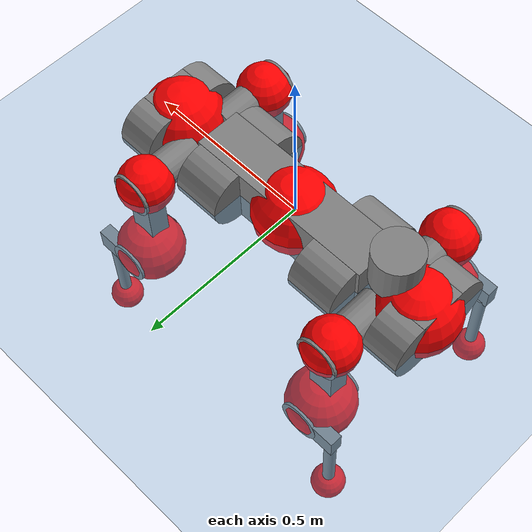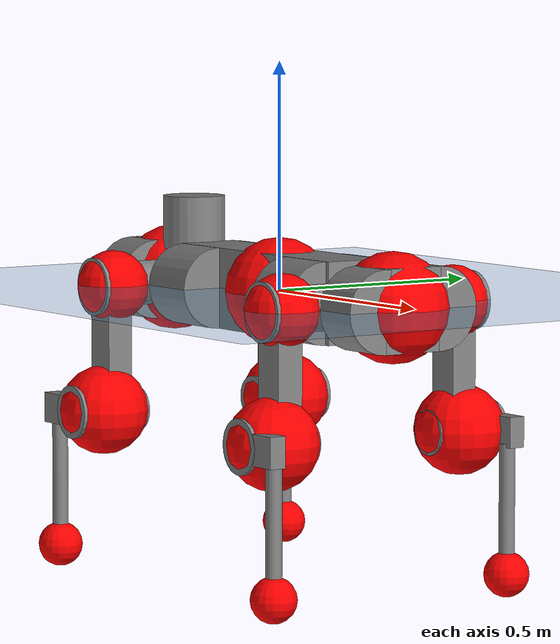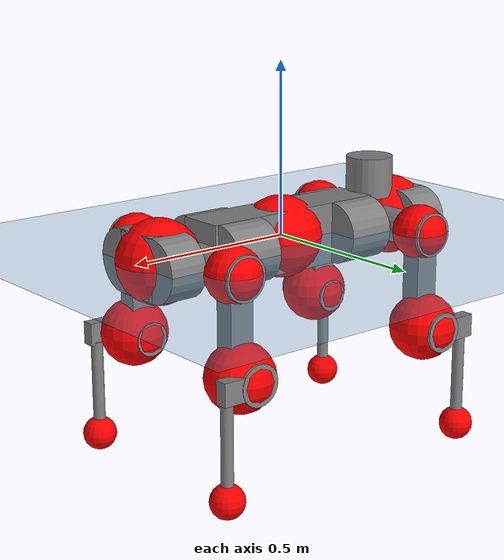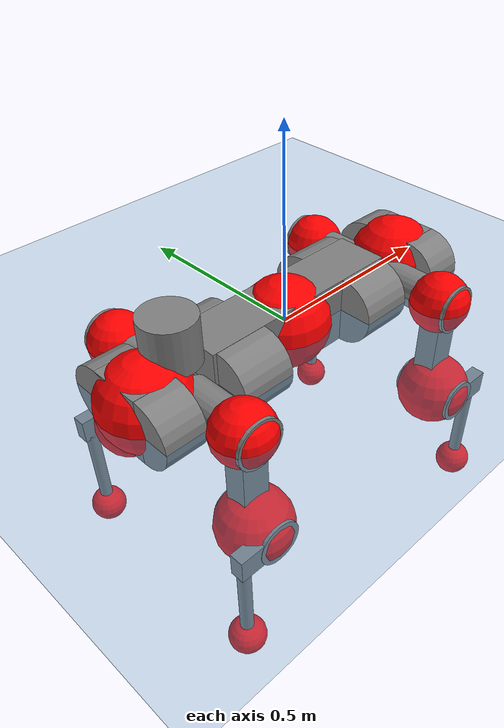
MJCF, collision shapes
<mujoco model="anymal_c">
  <compiler angle="radian" assetdir="assets" balanceinertia="true" inertiafromgeom="false"/>

  <option timestep="0.005" density="1.2" viscosity="2e-05"/>

  <size nkey="1"/>

  <visual>
    <quality shadowsize="8192"/>
    <map shadowclip="0.5"/>
  </visual>

  <default>
    <default class="/">
      <material specular="0" shininess="0.25"/>
      <geom contype="0" conaffinity="0" group="1" solref="-1000 -80"/>
      <site size="0.01 0.005 0.005" group="5"/>
      <general forcelimited="true" forcerange="-80 80" biastype="affine" gainprm="80" biasprm="0 -80 -2"/>
      <default class="anymal_c">
        <joint armature="0.01" damping="0.01" frictionloss="0.1"/>
        <default class="visual">
          <geom type="mesh" group="2"/>
          <default class="visual_zflip"/>
        </default>
        <default class="collision">
          <geom type="cylinder" group="3"/>
          <default class="foot">
            <geom size="0.03 0 0" type="sphere" condim="6" priority="1" friction="0.8 0.02 0.01" solimp="0.015 1 0.03"/>
          </default>
        </default>
      </default>
      <default class="reward_collision_sphere">
        <geom group="5" rgba="1 0 0 1"/>
      </default>
    </default>
  </default>

  <asset>
    <texture type="skybox" colorspace="auto" name="//unnamed_texture_0" builtin="gradient" rgb1="0.95 0.95 0.95" rgb2="0.95 0.95 0.95" width="100" height="600"/>
    <texture type="2d" colorspace="auto" name="texplane" builtin="checker" rgb1="0.345 0.575 0.748" rgb2="0.345 0.575 0.748" markrgb="1 1 1" width="512" height="512"/>
    <texture type="2d" colorspace="linear" name="base" file="base.png"/>
    <texture type="2d" colorspace="linear" name="top_shell" file="top_shell.png"/>
    <texture type="2d" colorspace="linear" name="bottom_shell" file="bottom_shell.png"/>
    <texture type="2d" colorspace="linear" name="remote" file="remote.png"/>
    <texture type="2d" colorspace="linear" name="hatch" file="hatch.png"/>
    <texture type="2d" colorspace="linear" name="handle" file="handle.png"/>
    <texture type="2d" colorspace="linear" name="face" file="face.png"/>
    <texture type="2d" colorspace="linear" name="battery" file="battery.png"/>
    <texture type="2d" colorspace="linear" name="lidar_cage" file="lidar_cage.png"/>
    <texture type="2d" colorspace="linear" name="depth_camera" file="depth_camera.png"/>
    <texture type="2d" colorspace="linear" name="wide_angle_camera" file="wide_angle_camera.png"/>
    <texture type="2d" colorspace="linear" name="lidar" file="lidar.png"/>
    <texture type="2d" colorspace="linear" name="drive" file="drive.png"/>
    <texture type="2d" colorspace="linear" name="hip_l" file="hip_l.png"/>
    <texture type="2d" colorspace="linear" name="shank_l" file="shank_l.png"/>
    <texture type="2d" colorspace="linear" name="foot" file="foot.png"/>
    <texture type="2d" colorspace="linear" name="thigh" file="thigh.png"/>
    <texture type="2d" colorspace="linear" name="shank_r" file="shank_r.png"/>
    <texture type="2d" colorspace="linear" name="hip_r" file="hip_r.png"/>
    <material name="MatPlane" class="/" texture="texplane" texuniform="true" texrepeat="2 2" specular="0.9" shininess="0.5"/>
    <material name="black_plastic" class="/" rgba="0.007 0.007 0.007 1"/>
    <material name="green" class="/" rgba="0.052 0.178 0.033 1"/>
    <material name="red" class="/" rgba="0.178 0.006 0.005 1"/>
    <material name="yellow" class="/" rgba="0.178 0.119 0.006 1"/>
    <material name="lwl" class="/" rgba="0.8 0.8 0.8 1"/>
    <material name="base" class="/" texture="base"/>
    <material name="top_shell" class="/" texture="top_shell"/>
    <material name="bottom_shell" class="/" texture="bottom_shell"/>
    <material name="hip_l" class="/" texture="hip_l"/>
    <material name="thigh" class="/" texture="thigh"/>
    <material name="shank_l" class="/" texture="shank_l"/>
    <material name="foot" class="/" texture="foot"/>
    <material name="hip_r" class="/" texture="hip_r"/>
    <material name="shank" class="/" texture="shank_r"/>
    <material name="hatch" class="/" texture="hatch"/>
    <material name="remote" class="/" texture="remote"/>
    <material name="handle" class="/" texture="handle"/>
    <material name="face" class="/" texture="face"/>
    <material name="depth_camera" class="/" texture="depth_camera"/>
    <material name="wide_angle_camera" class="/" texture="wide_angle_camera"/>
    <material name="battery" class="/" texture="battery"/>
    <material name="lidar_cage" class="/" texture="lidar_cage"/>
    <material name="lidar" class="/" texture="lidar"/>
    <material name="drive" class="/" texture="drive"/>
    <mesh name="base_0" class="/" file="base_0.obj"/>
    <mesh name="base_1" class="/" file="base_1.obj"/>
    <mesh name="base_2" class="/" file="base_2.obj"/>
    <mesh name="base_3" class="/" file="base_3.obj"/>
    <mesh name="base_4" class="/" file="base_4.obj"/>
    <mesh name="base_5" class="/" file="base_5.obj"/>
    <mesh name="top_shell" class="/" file="top_shell.obj"/>
    <mesh name="bottom_shell" class="/" file="bottom_shell.obj"/>
    <mesh name="remote" class="/" file="remote.obj"/>
    <mesh name="handle" class="/" file="handle.obj"/>
    <mesh name="face" class="/" file="face.obj"/>
    <mesh name="wide_angle_camera" class="/" file="wide_angle_camera.obj"/>
    <mesh name="depth_camera" class="/" file="depth_camera.obj"/>
    <mesh name="battery" class="/" file="battery.obj"/>
    <mesh name="lidar_cage" class="/" file="lidar_cage.obj"/>
    <mesh name="lidar" class="/" file="lidar.obj"/>
    <mesh name="drive" class="/" file="drive.obj"/>
    <mesh name="hip_l" class="/" file="hip_l.obj"/>
    <mesh name="thigh" class="/" file="thigh.obj"/>
    <mesh name="shank_l" class="/" file="shank_l.obj"/>
    <mesh name="foot" class="/" file="foot.obj"/>
    <mesh name="hip_r" class="/" file="hip_r.obj"/>
    <mesh name="hatch" class="/" file="hatch.obj"/>
    <mesh name="shank_r" class="/" file="shank_r.obj"/>
  </asset>

  <worldbody>
    <geom name="floor" class="/" size="100 100 0.125" type="plane" group="0" material="MatPlane"/>
    <light name="toplight_shadow" class="/" pos="0 0 5" dir="0.0990148 0.0990148 -0.990148" type="directional" ambient="0.04 0.04 0.04" diffuse="0.55 0.55 0.55" specular="0.12 0.12 0.12"/>
    <light name="toplight_fill" class="/" pos="0 0 5" dir="0.0990148 0.0990148 -0.990148" type="directional" castshadow="false" ambient="0.04 0.04 0.04" diffuse="0.3 0.3 0.3" specular="0.08 0.08 0.08"/>
    <body name="trunk" childclass="anymal_c" pos="-0.000281846 0.000184869 -0.00221953" quat="1 -0.00026768 0.000272907 -0.000297441">
      <inertial pos="0.00132105 9.02135e-05 0.0503564" quat="0.500214 0.499513 0.499918 0.500354" mass="18.0133" diaginertia="0.470351 0.742144 0.190927"/>
      <joint name="//unnamed_joint_0" type="free" armature="0" damping="0" frictionloss="0"/>
      <geom name="//unnamed_geom_1" class="visual" material="green" mesh="base_0"/>
      <geom name="//unnamed_geom_2" class="visual" material="yellow" mesh="base_1"/>
      <geom name="//unnamed_geom_3" class="visual" material="red" mesh="base_2"/>
      <geom name="//unnamed_geom_4" class="visual" material="black_plastic" mesh="base_3"/>
      <geom name="//unnamed_geom_5" class="visual" material="lwl" mesh="base_4"/>
      <geom name="//unnamed_geom_6" class="visual" material="base" mesh="base_5"/>
      <geom name="trunk_1" class="collision" size="0.287003 0.0692765 0.0890698" type="box"/>
      <geom name="trunk_2" class="collision" size="0.0890698 0.0717507" pos="0.205513 0.0731383 0" quat="0.707107 0 0.707107 0"/>
      <geom name="trunk_3" class="collision" size="0.0890698 0.0717507" pos="-0.205513 0.0731383 0" quat="0.707107 0 0.707107 0"/>
      <geom name="trunk_4" class="collision" size="0.0890698 0.0717507" pos="0.205513 -0.0731383 0" quat="0.707107 0 0.707107 0"/>
      <geom name="trunk_5" class="collision" size="0.0890698 0.0717507" pos="-0.205513 -0.0731383 0" quat="0.707107 0 0.707107 0"/>
      <geom name="//unnamed_geom_12" class="visual" material="top_shell" mesh="top_shell"/>
      <geom name="//unnamed_geom_13" class="visual" material="bottom_shell" mesh="bottom_shell"/>
      <geom name="//unnamed_geom_14" class="visual" material="remote" mesh="remote"/>
      <geom name="//unnamed_geom_15" class="visual" material="handle" mesh="handle"/>
      <geom name="//unnamed_geom_16" class="visual" pos="0.391655 0 0" quat="1 0 0 0" material="face" mesh="face"/>
      <geom name="trunk_6" class="collision" size="0.0544316 0.0692765 0.0890698" pos="0.443624 0 0" type="box"/>
      <geom name="//unnamed_geom_18" class="collision" size="0.0890698 0.0544316" pos="0.443624 0.0731383 0" quat="0.707107 0 0.707107 0"/>
      <geom name="//unnamed_geom_19" class="collision" size="0.0890698 0.0544316" pos="0.443624 -0.0731383 0" quat="0.707107 0 0.707107 0"/>
      <geom name="//unnamed_geom_20" class="visual" pos="0.436208 0 -0.0288562" quat="0.965926 0 0.258819 0" material="depth_camera" mesh="depth_camera"/>
      <geom name="//unnamed_geom_21" class="visual" pos="0.484726 0 0.0146598" material="wide_angle_camera" mesh="wide_angle_camera"/>
      <geom name="//unnamed_geom_22" class="visual_zflip" pos="-0.391655 0 0" quat="0 0 0 1" material="face" mesh="face"/>
      <geom name="trunk_7" class="collision" size="0.0544316 0.0692765 0.0890698" pos="-0.443624 0 0" quat="0 0 0 1" type="box"/>
      <geom name="//unnamed_geom_24" class="collision" size="0.0890698 0.0544316" pos="-0.443624 -0.0731383 0" quat="0 -0.707107 0 0.707107"/>
      <geom name="//unnamed_geom_25" class="collision" size="0.0890698 0.0544316" pos="-0.443624 0.0731383 0" quat="0 -0.707107 0 0.707107"/>
      <geom name="//unnamed_geom_26" class="visual" pos="-0.436208 0 -0.0288562" quat="0 -0.258819 0 0.965926" material="depth_camera" mesh="depth_camera"/>
      <geom name="//unnamed_geom_27" class="visual_zflip" pos="-0.484726 0 0.0146598" quat="0 0 0 1" material="wide_angle_camera" mesh="wide_angle_camera"/>
      <geom name="//unnamed_geom_28" class="visual" material="battery" mesh="battery"/>
      <geom name="//unnamed_geom_29" class="visual" pos="0 0.0812009 0.0281866" quat="0.683013 -0.183013 0.183013 0.683013" material="depth_camera" mesh="depth_camera"/>
      <geom name="//unnamed_geom_30" class="visual" pos="0 -0.0812009 0.0281866" quat="0.683013 0.183013 0.183013 -0.683013" material="depth_camera" mesh="depth_camera"/>
      <geom name="//unnamed_geom_31" class="visual" pos="-0.343938 0 0.0719768" quat="1 0 0 0" material="lidar_cage" mesh="lidar_cage"/>
      <geom name="trunk_8" class="collision" size="0.0692765 0.0593799" pos="-0.343938 0 0.130733"/>
      <geom name="//unnamed_geom_33" class="visual" pos="-0.343938 3.92669e-05 0.139253" quat="0.707107 0 0 -0.707107" material="lidar" mesh="lidar"/>
      <geom name="//unnamed_geom_34" class="visual" pos="0.283371 0.108639 1.13087e-09" quat="0.258819 0.965926 0 0" material="drive" mesh="drive"/>
      <geom name="//unnamed_geom_35" class="visual" pos="0.283371 -0.108639 -1.13087e-09" quat="0.258819 -0.965926 0 0" material="drive" mesh="drive"/>
      <geom name="//unnamed_geom_36" class="visual" pos="-0.283371 0.108639 -1.13087e-09" quat="0 0 0.965926 -0.258819" material="drive" mesh="drive"/>
      <geom name="//unnamed_geom_37" class="visual" pos="-0.283371 -0.108639 1.13087e-09" quat="0 0 -0.965926 -0.258819" material="drive" mesh="drive"/>
      <geom name="//unnamed_geom_38" class="visual" pos="0.109607 0 0.0714872" quat="1 0 0 0" material="hatch" mesh="hatch"/>
      <geom name="//unnamed_geom_39" class="reward_collision_sphere" size="0.11876"/>
      <geom name="//unnamed_geom_40" class="reward_collision_sphere" size="0.11876" pos="0.425198 0 0"/>
      <geom name="//unnamed_geom_41" class="reward_collision_sphere" size="0.11876" pos="-0.425198 0 0"/>
      <site name="imu" pos="0.247208 -0.0050681 0.0581132" size="0.00989665"/>
      <camera name="track" pos="0 -2.08967 0" quat="0.707107 0.707107 0 0" mode="trackcom"/>
      <camera name="ego_camera" pos="0.425198 0 -0.039171" quat="-0.5 -0.5 0.5 0.5"/>
      <body name="LF_HIP" pos="0.284543 0.106604 -0.000377633" quat="0.259106 0.965848 0.000464504 0.000842452">
        <inertial pos="0.0524658 -0.0148448 -0.0107901" quat="-0.12883 0.710606 -0.135054 0.678382" mass="2.56593" diaginertia="0.00429515 0.00575829 0.00298493"/>
        <joint name="LF_HAA" pos="0 0 0" axis="1 2.28416e-05 -1.00906e-05" range="-0.773277 0.497148" armature="0.0112827" damping="0.0233664" frictionloss="0.0921318"/>
        <geom name="//unnamed_geom_42" class="visual" pos="0 6.65237e-05 -1.09265e-05" quat="0.258819 -0.965926 0 0" material="hip_l" mesh="hip_l"/>
        <geom name="//unnamed_geom_43" class="visual" pos="0.0565986 -0.069874 -0.0398568" quat="0.183013 -0.683013 0.683013 0.183013" material="drive" mesh="drive"/>
        <geom name="//unnamed_geom_44" class="collision" size="0.0494832 0.0692765" pos="0.0565986 -0.012496 -0.0067619" quat="-0.353553 -0.612372 0.612372 -0.353553"/>
        <body name="LF_THIGH" pos="0.056899 -0.0772161 -0.0388818" quat="0.18273 -0.682958 0.683163 0.182937">
          <inertial pos="0.0301461 7.03151e-05 -0.243306" quat="0.992614 -0.00514856 -0.0851097 0.0862988" mass="3.00664" diaginertia="0.0226156 0.037659 0.00375176"/>
          <joint name="LF_HFE" pos="0 0 0" axis="0.999925 -0.00160615 -0.0121252" range="-3.19158 3.19329" armature="0.010735" damping="0.010847" frictionloss="0.0970412"/>
          <geom name="//unnamed_geom_45" class="visual" pos="-0.00198857 -3.13353e-06 0" quat="0.707107 0 0 -0.707107" material="thigh" mesh="thigh"/>
          <geom name="//unnamed_geom_46" class="collision" size="0.0643282 0.0395866" pos="0.0377954 0 0" quat="0.5 0.5 -0.5 -0.5"/>
          <geom name="//unnamed_geom_47" class="collision" size="0.0371124 0.0296899 0.139854" pos="0.0283466 0 -0.138385" quat="0.707107 0 0 -0.707107" type="box"/>
          <geom name="//unnamed_geom_48" class="visual" pos="0.094772 0 -0.279094" quat="1 0 0 0" material="drive" mesh="drive"/>
          <geom name="//unnamed_geom_49" class="collision" size="0.0494832 0.0692765" pos="0.02863 0 -0.279094" quat="0.707107 0 0.707107 0"/>
          <geom name="//unnamed_geom_50" class="reward_collision_sphere" size="0.0791732" pos="0.0236221 0 0"/>
          <body name="LF_SHANK" pos="0.0925923 0.00219157 -0.277135" quat="1 -0.000202414 7.37673e-06 1.95069e-05">
            <inertial pos="0.00593697 -0.0638906 -0.0794907" quat="0.993039 -0.114931 -6.05242e-05 -0.0257761" mass="0.53841" diaginertia="0.0076383 0.0116019 0.000972603"/>
            <joint name="LF_KFE" pos="0 0 0" axis="0.999982 0.00317378 0.00499483" range="-3.13983 3.12406" armature="0.00864118" damping="0.0158184" frictionloss="0.0880297"/>
            <geom name="//unnamed_geom_51" class="visual" pos="-0.00064843 -0.00345746 0" quat="0.707107 0 0 -0.707107" material="shank_l" mesh="shank_l"/>
            <geom name="LF_kfe_act" class="collision" size="0.0593799 0.0197933" pos="0.0188977 0 0" quat="0.5 0.5 -0.5 -0.5"/>
            <geom name="//unnamed_geom_53" class="collision" size="0.0569047 0.0334012 0.0188036" pos="0.0188977 -0.0600769 0" quat="0.5 0.5 -0.5 -0.5" type="box"/>
            <geom name="//unnamed_geom_54" class="visual" pos="0.0123309 -0.0930073 -0.330966" quat="0.382683 0 0 -0.92388" material="foot" mesh="foot"/>
            <geom name="LF_calf" class="collision" size="0.0173191 0.139792" pos="0.0123308 -0.0918931 -0.165483" quat="0.707107 0 0 -0.707107"/>
            <geom name="LF_foot" class="foot" size="0.0308746" pos="0.0123308 -0.0918931 -0.308932" quat="0.707107 0 0 -0.707107"/>
            <geom name="//unnamed_geom_57" class="reward_collision_sphere" size="0.0989665" pos="-0.0472443 0 0"/>
            <geom name="//unnamed_geom_58" class="reward_collision_sphere" size="0.0494832" pos="0.0123308 -0.0918931 -0.308932"/>
            <site name="LF_foot" class="foot" pos="0.0123308 -0.0918931 -0.308932" quat="0.707107 0 0 -0.707107" size="0.00989665"/>
          </body>
        </body>
      </body>
      <body name="RF_HIP" pos="0.28635 -0.111383 0.000989104" quat="0.259249 -0.96581 0.000226379 0.00062034">
        <inertial pos="0.0535445 0.0169918 -0.00894068" quat="0.135211 0.679028 0.127978 0.710113" mass="2.7414" diaginertia="0.00441467 0.00585704 0.0029602"/>
        <joint name="RF_HAA" pos="0 0 0" axis="0.999994 -0.000558209 0.0035187" stiffness="0.00239036" range="-0.455454 0.711386" armature="0.0102633" damping="0.0198554" frictionloss="0.0863999"/>
        <geom name="//unnamed_geom_59" class="visual" pos="0 -6.65232e-05 -1.09264e-05" quat="0.258819 0.965926 0 0" material="hip_r" mesh="hip_r"/>
        <geom name="//unnamed_geom_60" class="visual" pos="0.0565986 0.069874 -0.0398568" quat="0.183013 0.683013 0.683013 -0.183013" material="drive" mesh="drive"/>
        <geom name="//unnamed_geom_61" class="collision" size="0.0494832 0.0692765" pos="0.0565986 0.012496 -0.0067619" quat="-0.353553 0.612372 0.612372 0.353553"/>
        <body name="RF_THIGH" pos="0.0560984 0.0783653 -0.0428851" quat="0.182338 0.682175 0.683841 -0.183714">
          <inertial pos="0.0282564 -0.00029992 -0.240322" quat="0.992701 -0.00454171 -0.081402 0.0888733" mass="2.84433" diaginertia="0.0224441 0.0355975 0.00377871"/>
          <joint name="RF_HFE" pos="0 0 0" axis="1 -5.68912e-05 3.17934e-06" stiffness="0.00621466" range="-3.15989 3.13053" armature="0.00948879" damping="0.00319692" frictionloss="0.0916392"/>
          <geom name="//unnamed_geom_62" class="visual" pos="-0.00198857 -3.13353e-06 0" quat="0.707107 0 0 -0.707107" material="thigh" mesh="thigh"/>
          <geom name="//unnamed_geom_63" class="collision" size="0.0643282 0.0395866" pos="0.0377954 0 0" quat="0.5 0.5 0.5 0.5"/>
          <geom name="//unnamed_geom_64" class="collision" size="0.0371124 0.0296899 0.139854" pos="0.0283466 0 -0.138385" quat="0.707107 0 0 0.707107" type="box"/>
          <geom name="//unnamed_geom_65" class="visual" pos="0.094772 0 -0.279094" quat="1 0 0 0" material="drive" mesh="drive"/>
          <geom name="//unnamed_geom_66" class="collision" size="0.0494832 0.0692765" pos="0.02863 0 -0.279094" quat="0.707107 0 0.707107 0"/>
          <geom name="//unnamed_geom_67" class="reward_collision_sphere" size="0.0791732" pos="0.0236221 0 0"/>
          <body name="RF_SHANK" pos="0.0950222 0.00174303 -0.276403" quat="1 -5.67211e-05 -0.000294582 0.000215159">
            <inertial pos="0.00281755 0.0625749 -0.0793699" quat="0.992383 0.118119 -0.00507244 0.0346036" mass="0.581025" diaginertia="0.0079385 0.0116747 0.00102273"/>
            <joint name="RF_KFE" pos="0 0 0" axis="0.999983 -0.00463629 0.0035773" range="-3.09289 3.11038" armature="0.00998866" damping="0.0108486" frictionloss="0.103659"/>
            <geom name="//unnamed_geom_68" class="visual" pos="-0.000648427 0.00345746 0" quat="0.707107 0 0 0.707107" material="shank" mesh="shank_r"/>
            <geom name="RF_kfe_act" class="collision" size="0.0593799 0.0197933" pos="0.0188977 0 0" quat="0.5 0.5 0.5 0.5"/>
            <geom name="//unnamed_geom_70" class="collision" size="0.0569047 0.0334012 0.0188036" pos="0.0188977 0.0600769 0" quat="0.5 0.5 0.5 0.5" type="box"/>
            <geom name="//unnamed_geom_71" class="visual" pos="0.0123306 0.0930073 -0.330966" quat="0.382683 0 0 0.92388" material="foot" mesh="foot"/>
            <geom name="RF_calf" class="collision" size="0.0173191 0.139792" pos="0.0123308 0.0918931 -0.165483" quat="0.707107 0 0 0.707107"/>
            <geom name="RF_foot" class="foot" size="0.0290333" pos="0.0123308 0.0918931 -0.308932" quat="0.707107 0 0 0.707107"/>
            <geom name="//unnamed_geom_74" class="reward_collision_sphere" size="0.0989665" pos="-0.0472443 0 0"/>
            <geom name="//unnamed_geom_75" class="reward_collision_sphere" size="0.0494832" pos="0.0123308 0.0918931 -0.308932"/>
            <site name="RF_foot" class="foot" pos="0.0123308 0.0918931 -0.308932" quat="0.707107 0 0 0.707107" size="0.00989665"/>
          </body>
        </body>
      </body>
      <body name="LH_HIP" pos="-0.28376 0.110626 0.000103344" quat="-5.02118e-05 0.000150094 0.965929 -0.258809">
        <inertial pos="0.0508878 0.0146211 -0.00757702" quat="0.138746 0.680891 0.132861 0.706743" mass="2.7353" diaginertia="0.00454479 0.00631711 0.00286148"/>
        <joint name="LH_HAA" pos="0 0 0" axis="0.999948 0.00346942 -0.00955866" range="-0.466511 0.667311" armature="0.0101" damping="0" frictionloss="0.112826"/>
        <geom name="//unnamed_geom_76" class="visual" pos="0 -6.65232e-05 -1.09264e-05" quat="-0.258819 -0.965926 0 0" material="hip_r" mesh="hip_r"/>
        <geom name="//unnamed_geom_77" class="visual" pos="0.0565986 0.069874 -0.0398568" quat="0.183013 0.683013 0.683013 -0.183013" material="drive" mesh="drive"/>
        <geom name="//unnamed_geom_78" class="collision" size="0.0494832 0.0692765" pos="0.0565986 0.012496 -0.0067619" quat="-0.353553 0.612372 0.612372 0.353553"/>
        <body name="LH_THIGH" pos="0.0558258 0.0744135 -0.0421433" quat="0.183154 0.683814 0.682495 -0.181806">
          <inertial pos="0.0268282 -0.00231131 -0.240345" quat="0.992322 0.00558929 -0.0781383 0.0957068" mass="2.9291" diaginertia="0.0226432 0.0360855 0.00391555"/>
          <joint name="LH_HFE" pos="0 0 0" axis="0.999998 0.00105024 0.00144178" stiffness="0.0105778" range="-3.1457 3.14456" armature="0.00983948" damping="0.00435787" frictionloss="0.0993119"/>
          <geom name="//unnamed_geom_79" class="visual" pos="-0.00198857 -3.13353e-06 0" quat="0.707107 0 0 -0.707107" material="thigh" mesh="thigh"/>
          <geom name="//unnamed_geom_80" class="collision" size="0.0643282 0.0395866" pos="0.0377954 0 0" quat="0.5 0.5 -0.5 -0.5"/>
          <geom name="//unnamed_geom_81" class="collision" size="0.0371124 0.0296899 0.139854" pos="0.0283466 0 -0.138385" quat="0.707107 0 0 -0.707107" type="box"/>
          <geom name="//unnamed_geom_82" class="visual" pos="0.094772 0 -0.279094" quat="1 0 0 0" material="drive" mesh="drive"/>
          <geom name="//unnamed_geom_83" class="collision" size="0.0494832 0.0692765" pos="0.02863 0 -0.279094" quat="0.707107 0 0.707107 0"/>
          <geom name="//unnamed_geom_84" class="reward_collision_sphere" size="0.0791732" pos="0.0236221 0 0"/>
          <body name="LH_SHANK" pos="0.0964857 -0.00110404 -0.279815" quat="1 2.12995e-05 0.000433488 -0.000535171">
            <inertial pos="0.0070017 0.0614696 -0.0813466" quat="0.992885 0.116324 -0.000967 0.0254249" mass="0.553981" diaginertia="0.00731001 0.0113788 0.00097307"/>
            <joint name="LH_KFE" pos="0 0 0" axis="0.99996 0.00863082 -0.0022821" stiffness="0.000676306" range="-3.1527 3.16931" armature="0.00961524" damping="0.0170262" frictionloss="0.112802"/>
            <geom name="//unnamed_geom_85" class="visual" pos="-0.000648427 0.00345746 0" quat="-0.707107 0 0 -0.707107" material="shank" mesh="shank_r"/>
            <geom name="LH_kfe_act" class="collision" size="0.0593799 0.0197933" pos="0.0188977 0 0" quat="0.5 0.5 -0.5 -0.5"/>
            <geom name="//unnamed_geom_87" class="collision" size="0.0569047 0.0334012 0.0188036" pos="0.0188977 0.0600769 0" quat="0.5 0.5 -0.5 -0.5" type="box"/>
            <geom name="//unnamed_geom_88" class="visual" pos="0.0123306 0.0930073 -0.330966" quat="-0.382683 0 0 -0.92388" material="foot" mesh="foot"/>
            <geom name="LH_calf" class="collision" size="0.0173191 0.139792" pos="0.0123308 0.0918931 -0.165483" quat="0.707107 0 0 -0.707107"/>
            <geom name="LH_foot" class="foot" size="0.030391" pos="0.0123308 0.0918931 -0.308932" quat="0.707107 0 0 -0.707107"/>
            <geom name="//unnamed_geom_91" class="reward_collision_sphere" size="0.0989665" pos="-0.0472443 0 0"/>
            <geom name="//unnamed_geom_92" class="reward_collision_sphere" size="0.0494832" pos="0.0123308 0.0918931 -0.308932"/>
            <site name="LH_foot" class="foot" pos="0.0123308 0.0918931 -0.308932" quat="0.707107 0 0 -0.707107" size="0.00989665"/>
          </body>
        </body>
      </body>
      <body name="RH_HIP" pos="-0.283042 -0.106995 0.00056233" quat="0.000368349 0.000367922 -0.965827 -0.259187">
        <inertial pos="0.0548721 -0.0132744 -0.0110938" quat="-0.128811 0.711683 -0.131581 0.677939" mass="2.55009" diaginertia="0.00441317 0.00572711 0.00286652"/>
        <joint name="RH_HAA" pos="0 0 0" axis="0.999902 0.00573435 0.0128075" range="-0.745468 0.528025" armature="0.00937095" damping="0.00433461" frictionloss="0.111771"/>
        <geom name="//unnamed_geom_93" class="visual" pos="0 6.65237e-05 -1.09265e-05" quat="-0.258819 0.965926 0 0" material="hip_l" mesh="hip_l"/>
        <geom name="//unnamed_geom_94" class="visual" pos="0.0565986 -0.069874 -0.0398568" quat="-0.183013 0.683013 -0.683013 -0.183013" material="drive" mesh="drive"/>
        <geom name="//unnamed_geom_95" class="collision" size="0.0494832 0.0692765" pos="0.0565986 -0.012496 -0.0067619" quat="0.353553 0.612372 -0.612372 0.353553"/>
        <body name="RH_THIGH" pos="0.0562039 -0.0768542 -0.0405762" quat="-0.183091 0.68307 -0.682957 -0.182931">
          <inertial pos="0.0293891 -0.00109602 -0.237729" quat="0.994039 -0.00845889 -0.0762579 0.0774597" mass="2.99875" diaginertia="0.0233567 0.0381299 0.00384185"/>
          <joint name="RH_HFE" pos="0 0 0" axis="0.999925 0.00675615 0.01026" stiffness="0.00609191" range="-3.08651 3.13318" armature="0.00938666" damping="0.00858527" frictionloss="0.109968"/>
          <geom name="//unnamed_geom_96" class="visual" pos="-0.00198857 -3.13353e-06 0" quat="0.707107 0 0 -0.707107" material="thigh" mesh="thigh"/>
          <geom name="//unnamed_geom_97" class="collision" size="0.0643282 0.0395866" pos="0.0377954 0 0" quat="0.5 0.5 0.5 0.5"/>
          <geom name="//unnamed_geom_98" class="collision" size="0.0371124 0.0296899 0.139854" pos="0.0283466 0 -0.138385" quat="0.707107 0 0 0.707107" type="box"/>
          <geom name="//unnamed_geom_99" class="visual" pos="0.094772 0 -0.279094" quat="1 0 0 0" material="drive" mesh="drive"/>
          <geom name="//unnamed_geom_100" class="collision" size="0.0494832 0.0692765" pos="0.02863 0 -0.279094" quat="0.707107 0 0.707107 0"/>
          <geom name="//unnamed_geom_101" class="reward_collision_sphere" size="0.0791732" pos="0.0236221 0 0"/>
          <body name="RH_SHANK" pos="0.095167 -0.00173938 -0.276476" quat="0.999999 0.000519285 -0.00039049 -0.00084041">
            <inertial pos="0.00804351 -0.0635361 -0.0795068" quat="0.993032 -0.115063 -0.0013645 -0.0254253" mass="0.546136" diaginertia="0.00747518 0.0108012 0.000958827"/>
            <joint name="RH_KFE" pos="0 0 0" axis="0.999998 -0.0018677 0.000471155" range="-3.10233 3.15464" armature="0.0103281" damping="0.00703872" frictionloss="0.100773"/>
            <geom name="//unnamed_geom_102" class="visual" pos="-0.00064843 -0.00345746 0" quat="0.707107 0 0 -0.707107" material="shank_l" mesh="shank_l"/>
            <geom name="RH_kfe_act" class="collision" size="0.0593799 0.0197933" pos="0.0188977 0 0" quat="0.5 0.5 0.5 0.5"/>
            <geom name="//unnamed_geom_104" class="collision" size="0.0569047 0.0334012 0.0188036" pos="0.0188977 -0.0600769 0" quat="0.5 0.5 0.5 0.5" type="box"/>
            <geom name="//unnamed_geom_105" class="visual" pos="0.0123309 -0.0930073 -0.330966" quat="0.382683 0 0 -0.92388" material="foot" mesh="foot"/>
            <geom name="RH_calf" class="collision" size="0.0173191 0.139792" pos="0.0123308 -0.0918931 -0.165483" quat="0.707107 0 0 0.707107"/>
            <geom name="RH_foot" class="foot" size="0.0308336" pos="0.0123308 -0.0918931 -0.308932" quat="0.707107 0 0 0.707107"/>
            <geom name="//unnamed_geom_108" class="reward_collision_sphere" size="0.0989665" pos="-0.0472443 0 0"/>
            <geom name="//unnamed_geom_109" class="reward_collision_sphere" size="0.0494832" pos="0.0123308 -0.0918931 -0.308932"/>
            <site name="RH_foot" class="foot" pos="0.0123308 -0.0918931 -0.308932" quat="0.707107 0 0 0.707107" size="0.00989665"/>
          </body>
        </body>
      </body>
    </body>
  </worldbody>

  <contact>
    <pair class="/" geom1="floor" geom2="LF_foot" name="//unnamed_contact_0"/>
    <pair class="/" geom1="floor" geom2="RF_foot" name="//unnamed_contact_1"/>
    <pair class="/" geom1="floor" geom2="LH_foot" name="//unnamed_contact_2"/>
    <pair class="/" geom1="floor" geom2="RH_foot" name="//unnamed_contact_3"/>
  </contact>

  <actuator>
    <general name="LF_HAA" class="/" joint="LF_HAA" forcerange="-71.6062 71.6062" gainprm="80.4123" biasprm="0 -80.4123 -2.11369"/>
    <general name="LF_HFE" class="/" joint="LF_HFE" forcerange="-81.7333 81.7333" gainprm="80.4123" biasprm="0 -80.4123 -2.11369"/>
    <general name="LF_KFE" class="/" joint="LF_KFE" forcerange="-84.2469 84.2469" gainprm="80.4123" biasprm="0 -80.4123 -2.11369"/>
    <general name="RF_HAA" class="/" joint="RF_HAA" forcerange="-74.2447 74.2447" gainprm="80.4123" biasprm="0 -80.4123 -2.11369"/>
    <general name="RF_HFE" class="/" joint="RF_HFE" forcerange="-88.7396 88.7396" gainprm="80.4123" biasprm="0 -80.4123 -2.11369"/>
    <general name="RF_KFE" class="/" joint="RF_KFE" forcerange="-71.1983 71.1983" gainprm="80.4123" biasprm="0 -80.4123 -2.11369"/>
    <general name="LH_HAA" class="/" joint="LH_HAA" forcerange="-86.74 86.74" gainprm="80.4123" biasprm="0 -80.4123 -2.11369"/>
    <general name="LH_HFE" class="/" joint="LH_HFE" forcerange="-80.434 80.434" gainprm="80.4123" biasprm="0 -80.4123 -2.11369"/>
    <general name="LH_KFE" class="/" joint="LH_KFE" forcerange="-71.5859 71.5859" gainprm="80.4123" biasprm="0 -80.4123 -2.11369"/>
    <general name="RH_HAA" class="/" joint="RH_HAA" forcerange="-81.243 81.243" gainprm="80.4123" biasprm="0 -80.4123 -2.11369"/>
    <general name="RH_HFE" class="/" joint="RH_HFE" forcerange="-77.7754 77.7754" gainprm="80.4123" biasprm="0 -80.4123 -2.11369"/>
    <general name="RH_KFE" class="/" joint="RH_KFE" forcerange="-75.7554 75.7554" gainprm="80.4123" biasprm="0 -80.4123 -2.11369"/>
  </actuator>

  <sensor>
    <gyro site="imu" name="imu_angular_velocity"/>
    <velocimeter site="imu" name="imu_linear_velocity"/>
    <framelinvel objtype="site" objname="LF_foot" name="LF_foot_global_linear_velocity"/>
    <framelinvel objtype="site" objname="RF_foot" name="RF_foot_global_linear_velocity"/>
    <framelinvel objtype="site" objname="LH_foot" name="LH_foot_global_linear_velocity"/>
    <framelinvel objtype="site" objname="RH_foot" name="RH_foot_global_linear_velocity"/>
  </sensor>

  <keyframe>
    <key name="home" qpos="0 0 0.55 1 0 0 0 0 0.4 -0.8 0 -0.4 0.8 0 -0.4 0.8 0 0.4 -0.8"/>
  </keyframe>
</mujoco>
